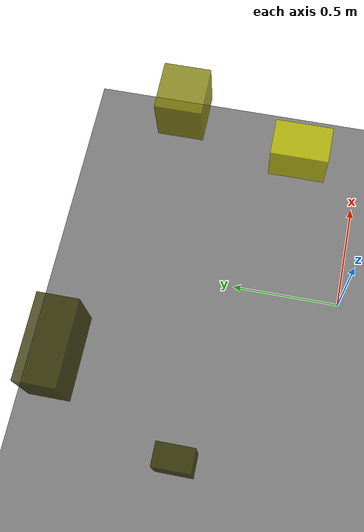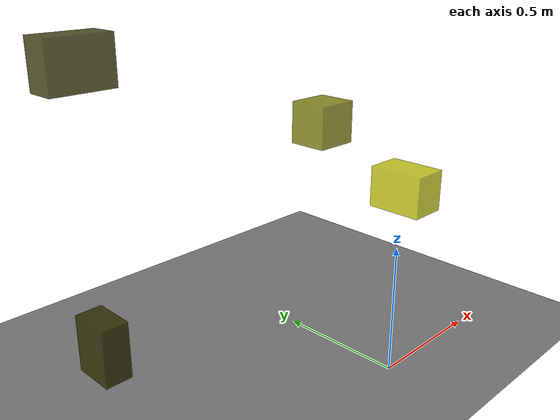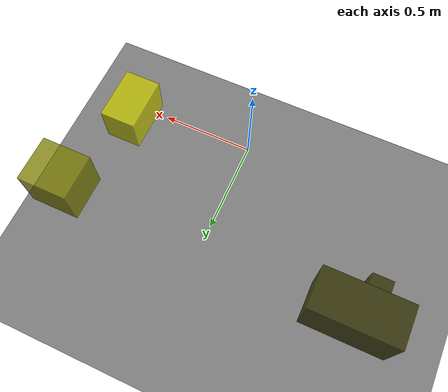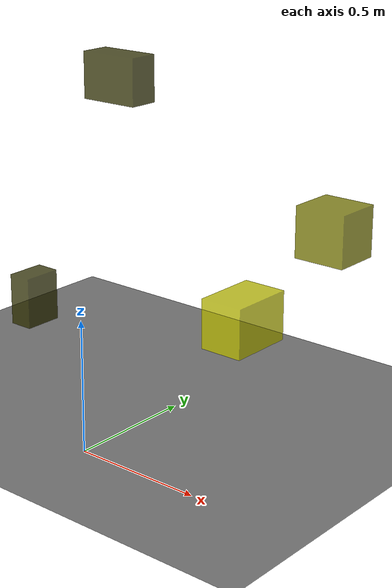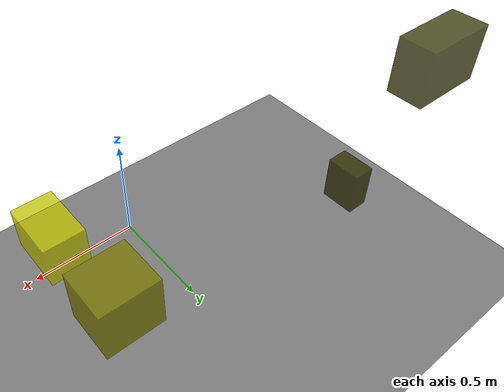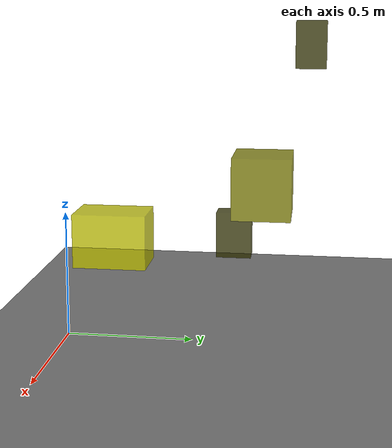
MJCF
<?xml version="1.0"?>
<mujoco model="obstacle_scene">
  <compiler angle="radian" coordinate="local"/>
  <option timestep="0.001" gravity="0 0 -9.81"/>

  <asset>
    <material name="obstacle_mat" rgba="0.8 0.8 0.0 0.8"/>
    <material name="ground_mat" rgba="0.5 0.5 0.5 1"/>
  </asset>

  <worldbody>
    <!-- Ground plane -->
    <geom name="ground" type="plane" size="3 3 0.1" material="ground_mat"/>

    <!-- Obstacles -->
    <body name="obstacle_0" pos="-0.859581 0.588089 0.218261">
      <geom name="obs_0" type="box" size="0.051717 0.082742 0.109265" rgba="0.2 0.2 0.0 0.8"/>
    </body>
    <body name="obstacle_1" pos="0.498032 0.800746 0.734482">
      <geom name="obs_1" type="box" size="0.102674 0.094415 0.099428" rgba="0.5 0.5 0.0 0.8"/>
    </body>
    <body name="obstacle_2" pos="0.474118 0.299941 0.537295">
      <geom name="obs_2" type="box" size="0.081147 0.121874 0.089977" rgba="0.8 0.8 0.0 0.8"/>
    </body>
    <body name="obstacle_3" pos="-0.677675 0.937633 1.131596">
      <geom name="obs_3" type="box" size="0.136371 0.066003 0.100076" rgba="0.2 0.2 0.0 0.8"/>
    </body>
  </worldbody>
</mujoco>
